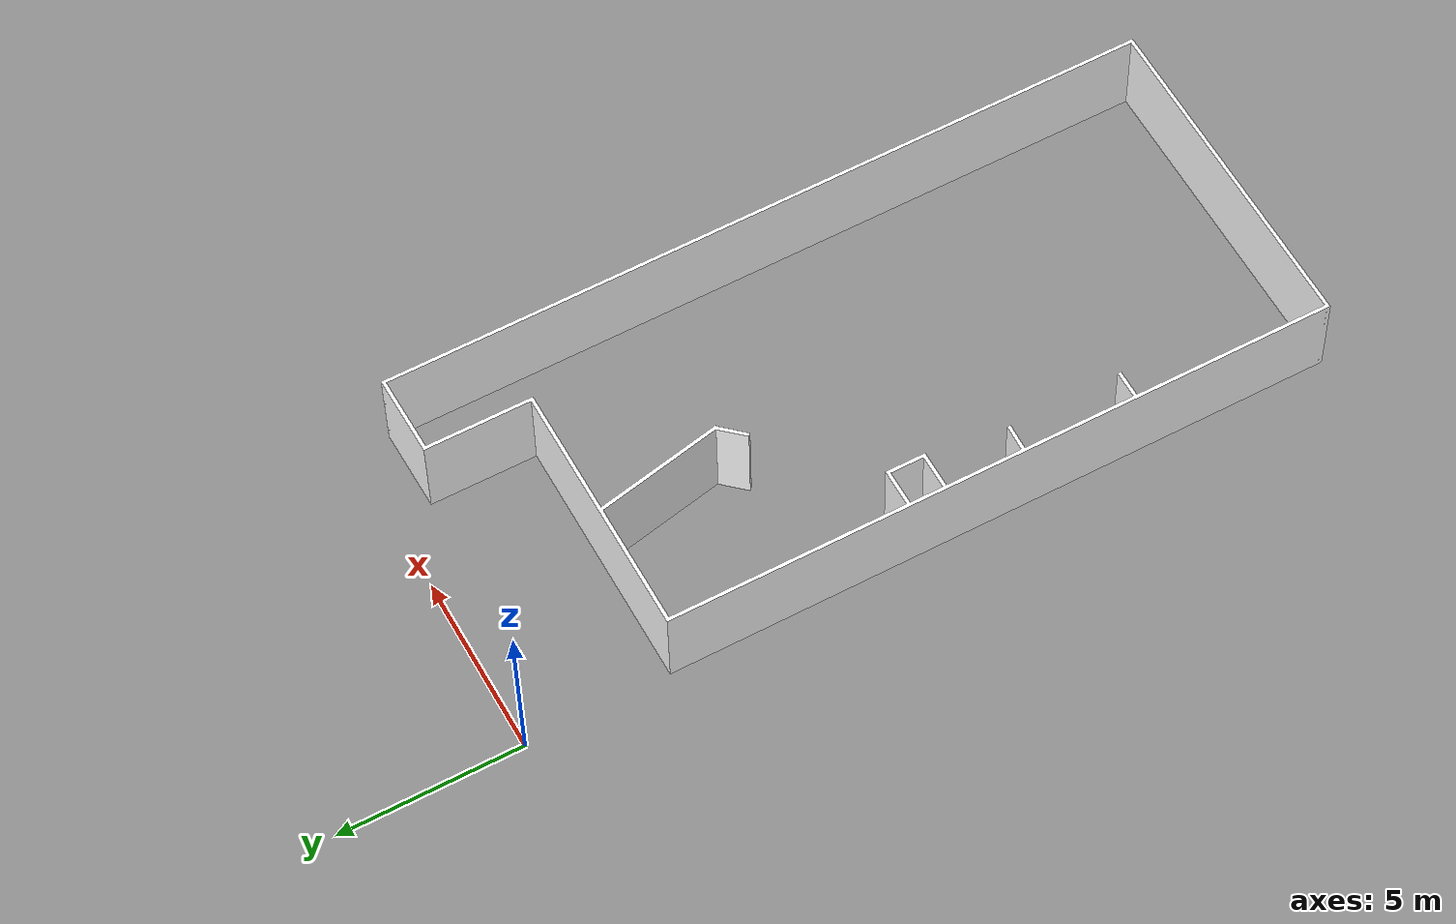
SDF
<?xml version='1.0' encoding='utf-8'?>
<sdf version="1.7">
  <model name="cafe_L2">
    <static>true</static>
    <link name="wall_1">
      <visual name="wall_1">
        <geometry>
          <mesh>
            <uri>model://cafe_L2/meshes/wall_1.obj</uri>
          </mesh>
        </geometry>
        <transparency>0.0</transparency>
        <material>
          <diffuse>1.0 1.0 1.0 1</diffuse>
          <specular>0.1 0.1 0.1</specular>
          <pbr>
            <metal>
              <metalness>0.0</metalness>
              <albedo_map>model://cafe_L2/meshes/default.png</albedo_map>
            </metal>
          </pbr>
          <script>
            <uri>model://cafe_L2/meshes/</uri>
            <name>wall_1_Diffuse</name>
          </script>
        </material>
      </visual>
      <collision name="collision">
        <geometry>
          <mesh>
            <uri>model://cafe_L2/meshes/wall_1.obj</uri>
          </mesh>
        </geometry>
        <surface>
          <contact>
            <collide_bitmask>0x01</collide_bitmask>
          </contact>
        </surface>
      </collision>
      <pose>0.05336730421420288 -22.344033804859492 0 0 0 0</pose>
    </link>
  </model>
</sdf>
